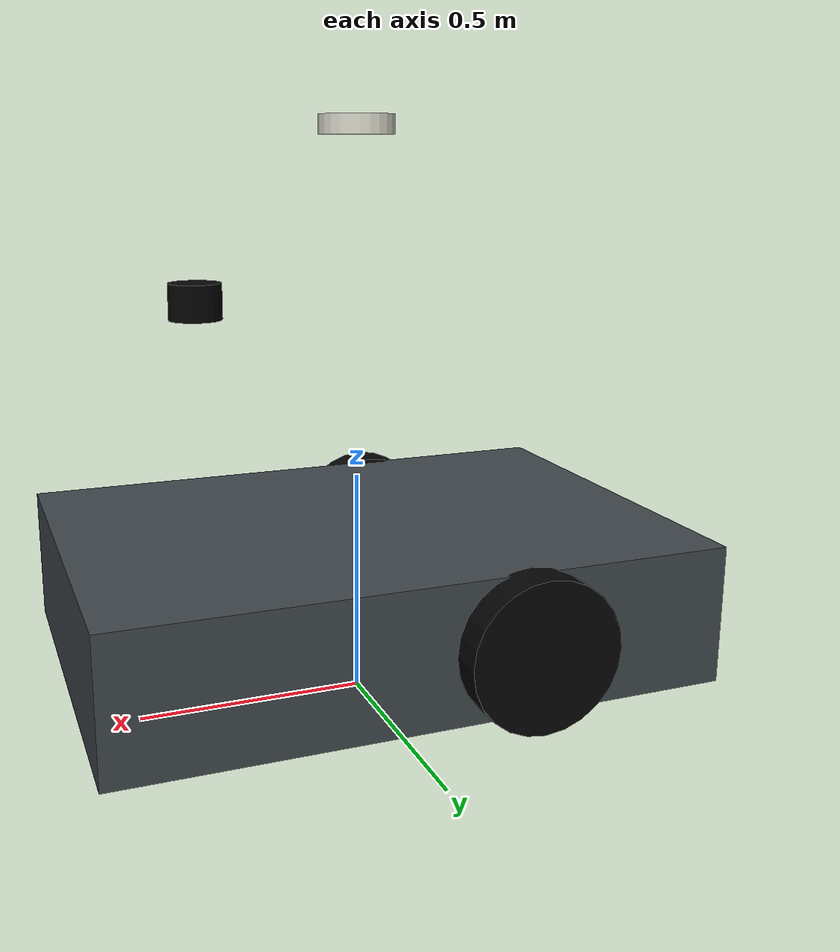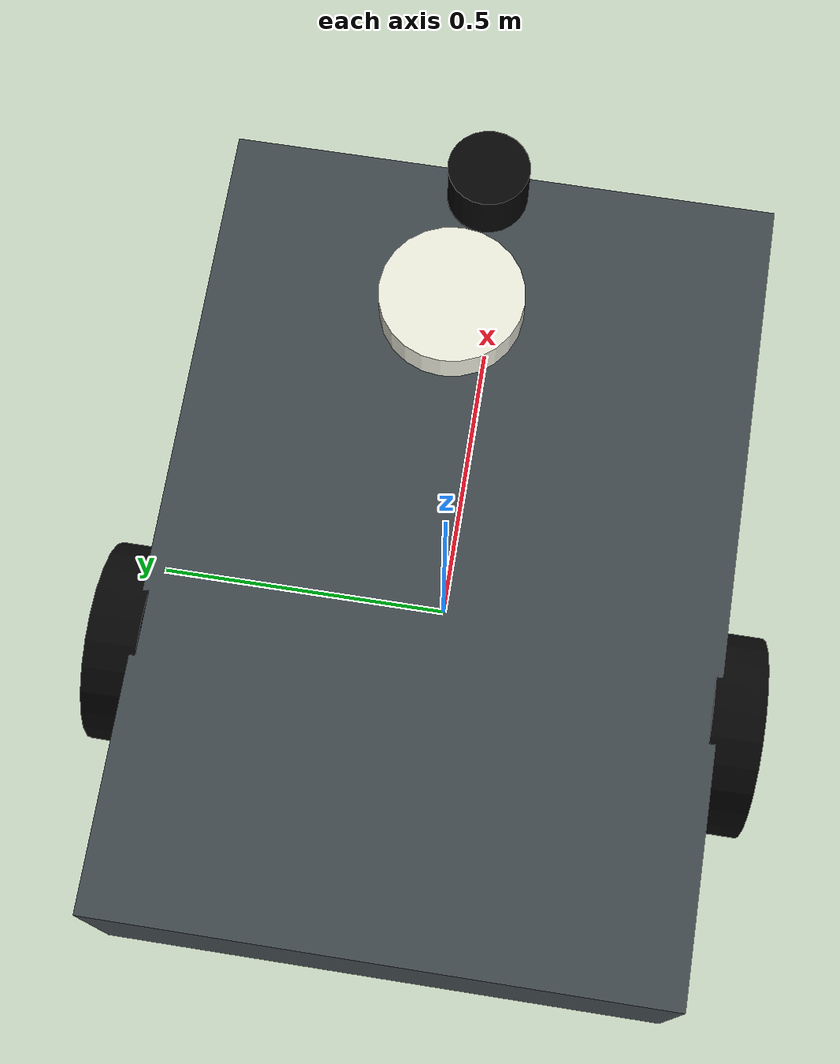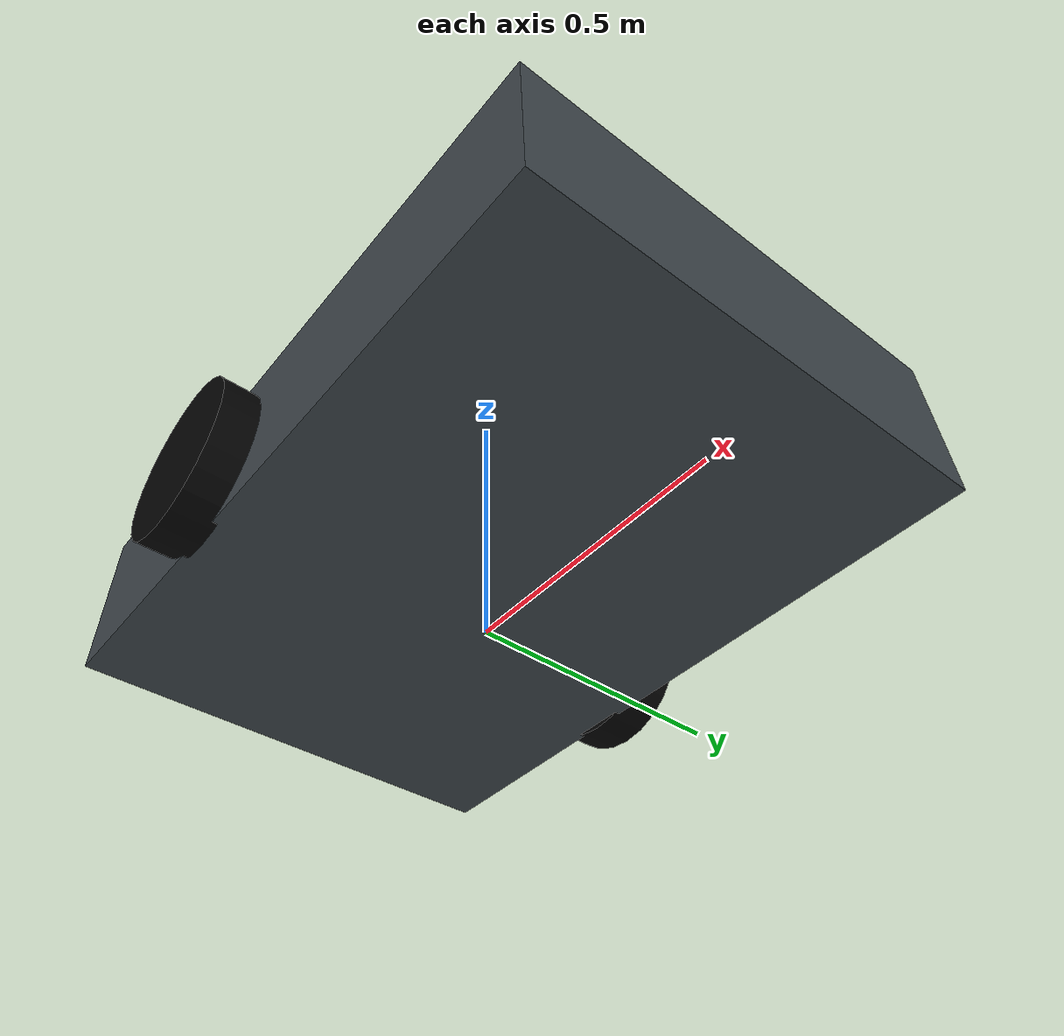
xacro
<?xml version="1.0"?>
<!-- xmlns:xacro 声明 xacro 的命名空间，这允许使用 xacro 特有的语法 -->
<robot name="golf_mower" xmlns:xacro="http://www.ros.org/wiki/xacro">
  <xacro:arg name="base_length" default="1.30"/>
  <xacro:arg name="base_width" default="0.90"/>
  <xacro:arg name="base_height" default="0.30"/>
  <xacro:arg name="base_z" default="0.25"/>

  <xacro:arg name="lidar_x" default="0.35"/>
  <xacro:arg name="lidar_y" default="0.0"/>
  <xacro:arg name="lidar_z" default="0.65"/>
  <xacro:arg name="lidar_roll" default="0.0"/>
  <xacro:arg name="lidar_pitch" default="0.0"/>
  <xacro:arg name="lidar_yaw" default="0.0"/>

  <!-- Default IMU origin = default LiDAR origin + [-0.007698, -0.014655, 0.00667]. -->
  <xacro:arg name="imu_x" default="0.342302"/>
  <xacro:arg name="imu_y" default="-0.014655"/>
  <xacro:arg name="imu_z" default="0.65667"/>
  <xacro:arg name="imu_roll" default="0.0"/>
  <xacro:arg name="imu_pitch" default="0.0"/>
  <xacro:arg name="imu_yaw" default="0.0"/>

  <xacro:arg name="rtk_x" default="0.0"/>
  <xacro:arg name="rtk_y" default="0.0"/>
  <xacro:arg name="rtk_z" default="1.00"/>
  <xacro:arg name="rtk_roll" default="0.0"/>
  <xacro:arg name="rtk_pitch" default="0.0"/>
  <xacro:arg name="rtk_yaw" default="0.0"/>

  <xacro:arg name="mower_x" default="-0.15"/>
  <xacro:arg name="mower_y" default="0.0"/>
  <xacro:arg name="mower_z" default="-0.10"/>
  <xacro:arg name="mower_roll" default="0.0"/>
  <xacro:arg name="mower_pitch" default="0.0"/>
  <xacro:arg name="mower_yaw" default="0.0"/>
  <xacro:arg name="mower_width" default="0.80"/>
  <xacro:arg name="mower_length" default="0.35"/>

  <xacro:arg name="wheel_radius" default="0.16"/>
  <xacro:arg name="wheel_width" default="0.08"/>
  <xacro:arg name="wheel_x" default="-0.20"/>
  <xacro:arg name="wheel_y" default="0.48"/>
  <xacro:arg name="wheel_z" default="0.0"/>

  <xacro:property name="base_length" value="$(arg base_length)"/>
  <xacro:property name="base_width" value="$(arg base_width)"/>
  <xacro:property name="base_height" value="$(arg base_height)"/>
  <xacro:property name="base_z" value="$(arg base_z)"/>
  <xacro:property name="mower_width" value="$(arg mower_width)"/>
  <xacro:property name="mower_length" value="$(arg mower_length)"/>
  <xacro:property name="wheel_radius" value="$(arg wheel_radius)"/>
  <xacro:property name="wheel_width" value="$(arg wheel_width)"/>

<!-- 定义颜色和透明度主要是为了可视化显示 -->
  <material name="body_gray">
    <color rgba="0.25 0.28 0.30 1.0"/>
  </material>
  <material name="sensor_black">
    <color rgba="0.02 0.02 0.02 1.0"/>
  </material>
  <material name="rtk_white">
    <color rgba="0.92 0.92 0.86 1.0"/>
  </material>
  <material name="mower_green">
    <color rgba="0.10 0.45 0.18 0.75"/>
  </material>

  <link name="base_footprint"/>

  <joint name="base_footprint_to_base_link" type="fixed">
    <parent link="base_footprint"/>
    <child link="base_link"/>
    <origin xyz="0 0 ${base_z}" rpy="0 0 0"/>
  </joint>

  <link name="base_link">
    <visual>
      <origin xyz="0 0 0" rpy="0 0 0"/>
      <geometry>
        <box size="${base_length} ${base_width} ${base_height}"/>
      </geometry>
      <material name="body_gray"/>
    </visual>
    <collision>
      <origin xyz="0 0 0" rpy="0 0 0"/>
      <geometry>
        <box size="${base_length} ${base_width} ${base_height}"/>
      </geometry>
    </collision>
  </link>

  <link name="unilidar_lidar">
    <visual>
      <origin xyz="0 0 0" rpy="0 0 0"/>
      <geometry>
        <cylinder radius="0.055" length="0.075"/>
      </geometry>
      <material name="sensor_black"/>
    </visual>
  </link>

  <joint name="base_link_to_unilidar_lidar" type="fixed">
    <parent link="base_link"/>
    <child link="unilidar_lidar"/>
    <origin
      xyz="$(arg lidar_x) $(arg lidar_y) $(arg lidar_z)"
      rpy="$(arg lidar_roll) $(arg lidar_pitch) $(arg lidar_yaw)"/>
  </joint>

  <link name="unilidar_imu">
    <visual>
      <origin xyz="0 0 0" rpy="0 0 0"/>
      <geometry>
        <box size="0.05 0.04 0.02"/>
      </geometry>
      <material name="sensor_black"/>
    </visual>
  </link>

  <joint name="base_link_to_unilidar_imu" type="fixed">
    <parent link="base_link"/>
    <child link="unilidar_imu"/>
    <origin
      xyz="$(arg imu_x) $(arg imu_y) $(arg imu_z)"
      rpy="$(arg imu_roll) $(arg imu_pitch) $(arg imu_yaw)"/>
  </joint>

  <link name="rtk_antenna">
    <visual>
      <origin xyz="0 0 0" rpy="0 0 0"/>
      <geometry>
        <cylinder radius="0.08" length="0.04"/>
      </geometry>
      <material name="rtk_white"/>
    </visual>
  </link>

  <joint name="base_link_to_rtk_antenna" type="fixed">
    <parent link="base_link"/>
    <child link="rtk_antenna"/>
    <origin
      xyz="$(arg rtk_x) $(arg rtk_y) $(arg rtk_z)"
      rpy="$(arg rtk_roll) $(arg rtk_pitch) $(arg rtk_yaw)"/>
  </joint>

  <link name="mower_tool">
    <visual>
      <origin xyz="0 0 0" rpy="0 0 0"/>
      <geometry>
        <box size="${mower_length} ${mower_width} 0.04"/>
      </geometry>
      <material name="mower_green"/>
    </visual>
  </link>

  <joint name="base_link_to_mower_tool" type="fixed">
    <parent link="base_link"/>
    <child link="mower_tool"/>
    <origin
      xyz="$(arg mower_x) $(arg mower_y) $(arg mower_z)"
      rpy="$(arg mower_roll) $(arg mower_pitch) $(arg mower_yaw)"/>
  </joint>

  <xacro:macro name="wheel" params="name y">
    <link name="${name}">
      <visual>
        <origin xyz="0 0 0" rpy="1.57079632679 0 0"/>
        <geometry>
          <cylinder radius="${wheel_radius}" length="${wheel_width}"/>
        </geometry>
        <material name="sensor_black"/>
      </visual>
      <collision>
        <origin xyz="0 0 0" rpy="1.57079632679 0 0"/>
        <geometry>
          <cylinder radius="${wheel_radius}" length="${wheel_width}"/>
        </geometry>
      </collision>
    </link>
    <joint name="base_link_to_${name}" type="fixed">
      <parent link="base_link"/>
      <child link="${name}"/>
      <origin xyz="$(arg wheel_x) ${y} $(arg wheel_z)" rpy="0 0 0"/>
    </joint>
  </xacro:macro>

  <xacro:wheel name="left_wheel" y="$(arg wheel_y)"/>
  <xacro:wheel name="right_wheel" y="-$(arg wheel_y)"/>
</robot>
